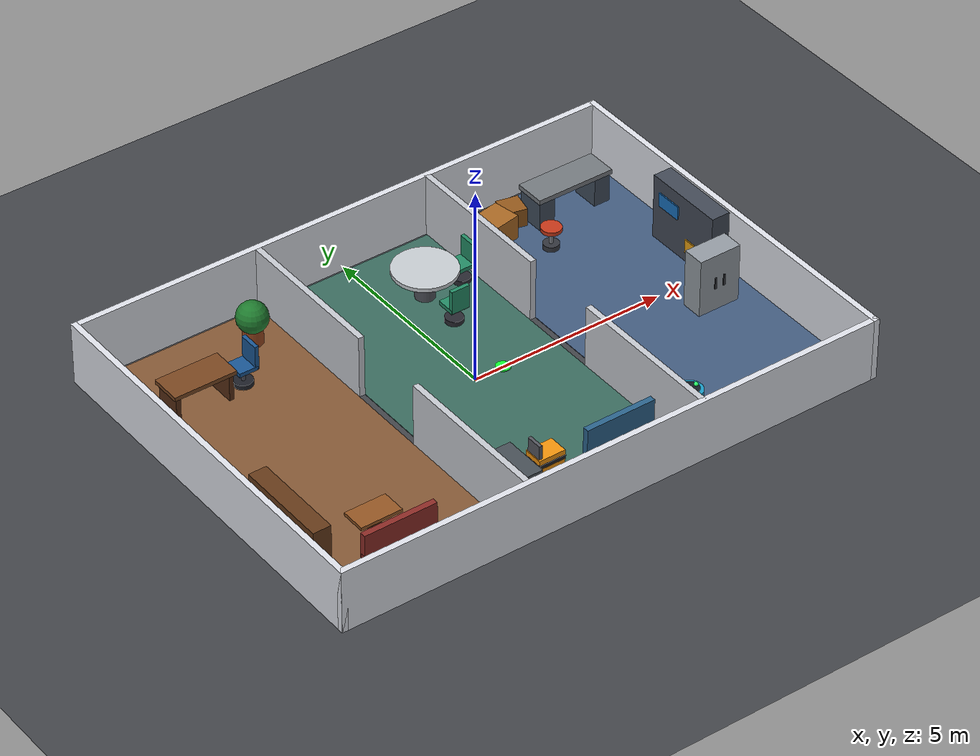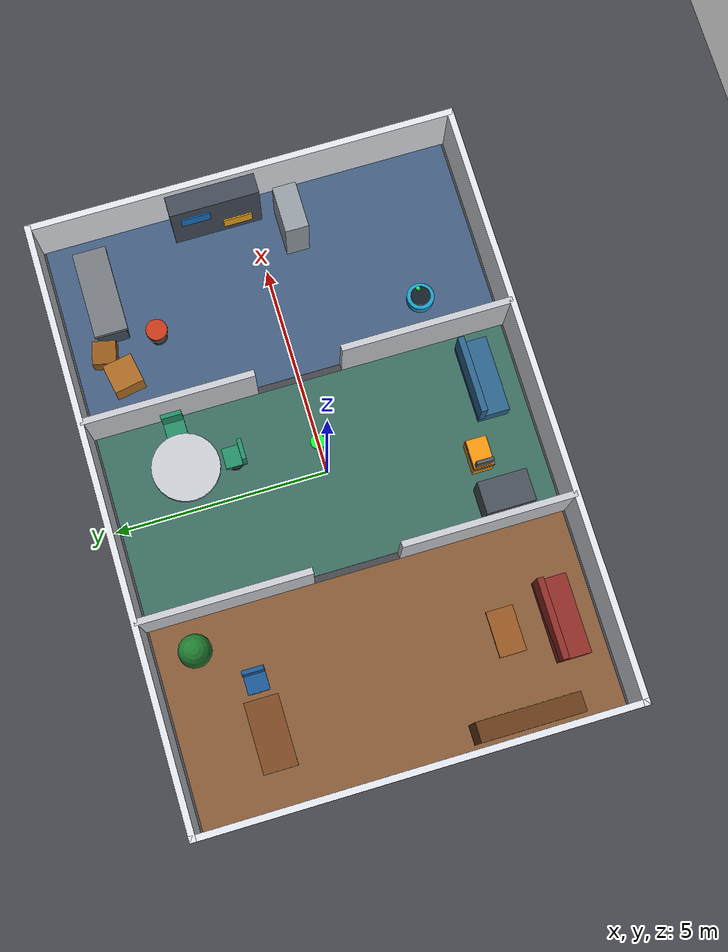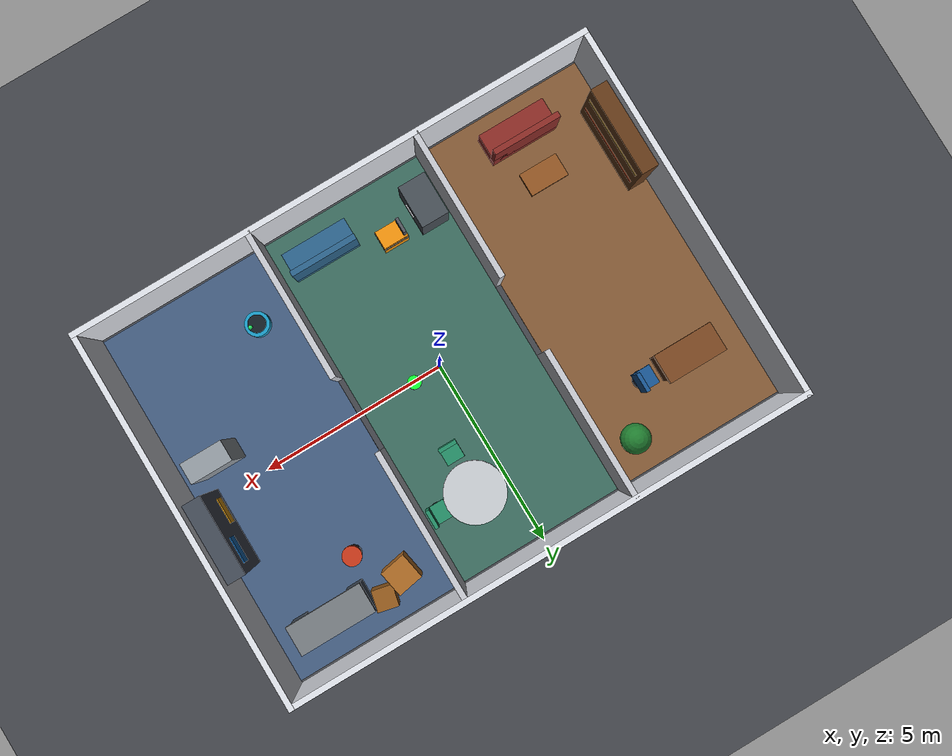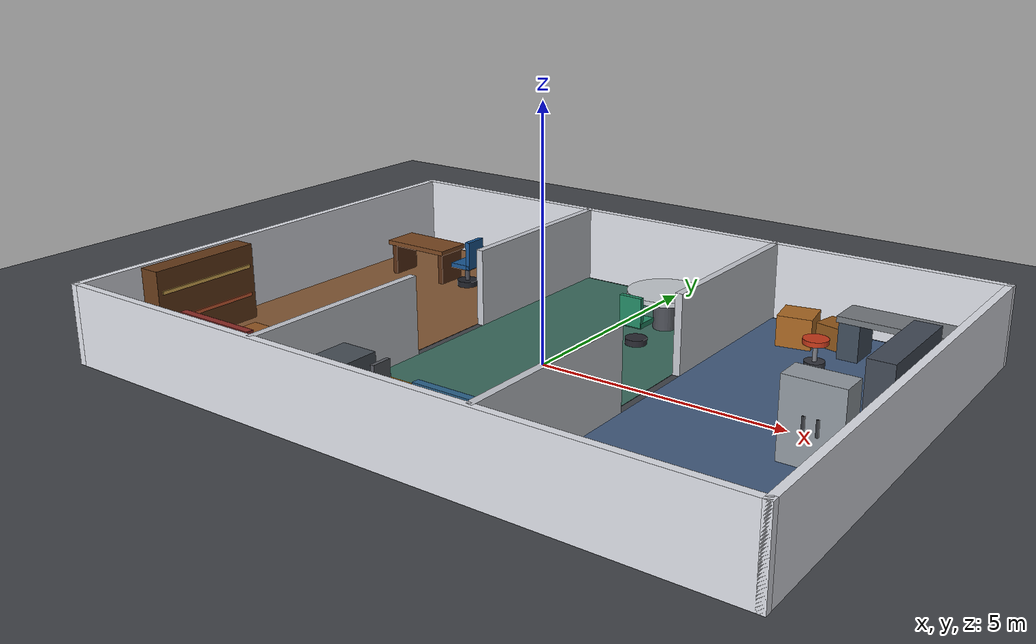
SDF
<?xml version="1.0" ?>
<sdf version="1.9">
  <world name="rl_office_training_world">
    <gravity>0 0 -9.8</gravity>

    <physics name="learning_physics" type="ode">
      <max_step_size>0.001</max_step_size>
      <real_time_factor>1.0</real_time_factor>
    </physics>

    <plugin filename="gz-sim-physics-system"
            name="gz::sim::systems::Physics"/>
    <plugin filename="gz-sim-user-commands-system"
            name="gz::sim::systems::UserCommands"/>
    <plugin filename="gz-sim-scene-broadcaster-system"
            name="gz::sim::systems::SceneBroadcaster"/>
    <plugin filename="gz-sim-contact-system"
            name="gz::sim::systems::Contact"/>

    <scene>
      <ambient>0.56 0.58 0.62 1</ambient>
      <background>0.72 0.78 0.86 1</background>
      <shadows>true</shadows>
      <grid>false</grid>
    </scene>

    <light name="sun" type="directional">
      <pose>0 0 12 0 0 0</pose>
      <cast_shadows>true</cast_shadows>
      <diffuse>0.82 0.82 0.80 1</diffuse>
      <specular>0.18 0.18 0.18 1</specular>
      <direction>-0.45 0.30 -1.0</direction>
    </light>

    <light name="office_light" type="point">
      <pose>-4.6 0 3.0 0 0 0</pose>
      <diffuse>0.96 0.86 0.70 1</diffuse>
      <specular>0.12 0.12 0.12 1</specular>
      <attenuation>
        <range>9</range>
        <constant>0.35</constant>
        <linear>0.025</linear>
        <quadratic>0.008</quadratic>
      </attenuation>
    </light>

    <light name="meeting_light" type="point">
      <pose>0 0 3.0 0 0 0</pose>
      <diffuse>0.82 0.92 0.84 1</diffuse>
      <specular>0.12 0.12 0.12 1</specular>
      <attenuation>
        <range>9</range>
        <constant>0.35</constant>
        <linear>0.025</linear>
        <quadratic>0.008</quadratic>
      </attenuation>
    </light>

    <light name="lab_light" type="point">
      <pose>4.6 0 3.0 0 0 0</pose>
      <diffuse>0.72 0.84 1.00 1</diffuse>
      <specular>0.14 0.14 0.14 1</specular>
      <attenuation>
        <range>9</range>
        <constant>0.35</constant>
        <linear>0.025</linear>
        <quadratic>0.008</quadratic>
      </attenuation>
    </light>

    <!-- One collision plane supports the complete building. -->
    <model name="ground_plane">
      <static>true</static>
      <link name="ground_link">
        <collision name="ground_collision">
          <geometry>
            <plane>
              <normal>0 0 1</normal>
              <size>16 12</size>
            </plane>
          </geometry>
          <surface>
            <friction>
              <ode>
                <mu>1.0</mu>
                <mu2>1.0</mu2>
              </ode>
            </friction>
          </surface>
        </collision>
        <visual name="ground_visual">
          <geometry>
            <plane>
              <normal>0 0 1</normal>
              <size>16 12</size>
            </plane>
          </geometry>
          <material>
            <ambient>0.19 0.20 0.22 1</ambient>
            <diffuse>0.26 0.27 0.29 1</diffuse>
            <specular>0.02 0.02 0.02 1</specular>
          </material>
        </visual>
      </link>
    </model>

    <!-- Visual-only floor panels make room identity obvious in recordings. -->
    <model name="office_floor_panel">
      <static>true</static>
      <pose>-4.65 0 0.006 0 0 0</pose>
      <link name="link">
        <visual name="visual">
          <geometry><box><size>4.55 9.75 0.01</size></box></geometry>
          <material>
            <ambient>0.42 0.28 0.17 1</ambient>
            <diffuse>0.52 0.35 0.21 1</diffuse>
          </material>
        </visual>
      </link>
    </model>

    <model name="meeting_floor_panel">
      <static>true</static>
      <pose>0 0 0.006 0 0 0</pose>
      <link name="link">
        <visual name="visual">
          <geometry><box><size>4.45 9.75 0.01</size></box></geometry>
          <material>
            <ambient>0.18 0.33 0.29 1</ambient>
            <diffuse>0.23 0.42 0.37 1</diffuse>
          </material>
        </visual>
      </link>
    </model>

    <model name="lab_floor_panel">
      <static>true</static>
      <pose>4.65 0 0.006 0 0 0</pose>
      <link name="link">
        <visual name="visual">
          <geometry><box><size>4.55 9.75 0.01</size></box></geometry>
          <material>
            <ambient>0.20 0.28 0.40 1</ambient>
            <diffuse>0.26 0.36 0.50 1</diffuse>
          </material>
        </visual>
      </link>
    </model>

    <!-- Outer walls: 14 m x 10 m interior, 1.6 m high. -->
    <model name="north_wall">
      <static>true</static>
      <pose>0 5.0 0.8 0 0 0</pose>
      <link name="link">
        <collision name="collision">
          <geometry><box><size>14.15 0.15 1.6</size></box></geometry>
        </collision>
        <visual name="visual">
          <geometry><box><size>14.15 0.15 1.6</size></box></geometry>
          <material>
            <ambient>0.80 0.82 0.86 1</ambient>
            <diffuse>0.88 0.89 0.92 1</diffuse>
          </material>
        </visual>
      </link>
    </model>

    <model name="south_wall">
      <static>true</static>
      <pose>0 -5.0 0.8 0 0 0</pose>
      <link name="link">
        <collision name="collision">
          <geometry><box><size>14.15 0.15 1.6</size></box></geometry>
        </collision>
        <visual name="visual">
          <geometry><box><size>14.15 0.15 1.6</size></box></geometry>
          <material>
            <ambient>0.80 0.82 0.86 1</ambient>
            <diffuse>0.88 0.89 0.92 1</diffuse>
          </material>
        </visual>
      </link>
    </model>

    <model name="west_wall">
      <static>true</static>
      <pose>-7.0 0 0.8 0 0 0</pose>
      <link name="link">
        <collision name="collision">
          <geometry><box><size>0.15 10.15 1.6</size></box></geometry>
        </collision>
        <visual name="visual">
          <geometry><box><size>0.15 10.15 1.6</size></box></geometry>
          <material>
            <ambient>0.80 0.82 0.86 1</ambient>
            <diffuse>0.88 0.89 0.92 1</diffuse>
          </material>
        </visual>
      </link>
    </model>

    <model name="east_wall">
      <static>true</static>
      <pose>7.0 0 0.8 0 0 0</pose>
      <link name="link">
        <collision name="collision">
          <geometry><box><size>0.15 10.15 1.6</size></box></geometry>
        </collision>
        <visual name="visual">
          <geometry><box><size>0.15 10.15 1.6</size></box></geometry>
          <material>
            <ambient>0.80 0.82 0.86 1</ambient>
            <diffuse>0.88 0.89 0.92 1</diffuse>
          </material>
        </visual>
      </link>
    </model>

    <!-- Partition at x=-2.3, with a 2.0 m doorway centred at y=0. -->
    <model name="office_partition_north">
      <static>true</static>
      <pose>-2.3 3.0 0.8 0 0 0</pose>
      <link name="link">
        <collision name="collision">
          <geometry><box><size>0.15 4.0 1.6</size></box></geometry>
        </collision>
        <visual name="visual">
          <geometry><box><size>0.15 4.0 1.6</size></box></geometry>
          <material>
            <ambient>0.68 0.70 0.74 1</ambient>
            <diffuse>0.78 0.79 0.82 1</diffuse>
          </material>
        </visual>
      </link>
    </model>

    <model name="office_partition_south">
      <static>true</static>
      <pose>-2.3 -3.0 0.8 0 0 0</pose>
      <link name="link">
        <collision name="collision">
          <geometry><box><size>0.15 4.0 1.6</size></box></geometry>
        </collision>
        <visual name="visual">
          <geometry><box><size>0.15 4.0 1.6</size></box></geometry>
          <material>
            <ambient>0.68 0.70 0.74 1</ambient>
            <diffuse>0.78 0.79 0.82 1</diffuse>
          </material>
        </visual>
      </link>
    </model>

    <!-- Partition at x=2.3, with another 2.0 m doorway. -->
    <model name="lab_partition_north">
      <static>true</static>
      <pose>2.3 3.0 0.8 0 0 0</pose>
      <link name="link">
        <collision name="collision">
          <geometry><box><size>0.15 4.0 1.6</size></box></geometry>
        </collision>
        <visual name="visual">
          <geometry><box><size>0.15 4.0 1.6</size></box></geometry>
          <material>
            <ambient>0.68 0.70 0.74 1</ambient>
            <diffuse>0.78 0.79 0.82 1</diffuse>
          </material>
        </visual>
      </link>
    </model>

    <model name="lab_partition_south">
      <static>true</static>
      <pose>2.3 -3.0 0.8 0 0 0</pose>
      <link name="link">
        <collision name="collision">
          <geometry><box><size>0.15 4.0 1.6</size></box></geometry>
        </collision>
        <visual name="visual">
          <geometry><box><size>0.15 4.0 1.6</size></box></geometry>
          <material>
            <ambient>0.68 0.70 0.74 1</ambient>
            <diffuse>0.78 0.79 0.82 1</diffuse>
          </material>
        </visual>
      </link>
    </model>

    <!-- ======================= OFFICE FURNITURE ======================= -->

    <model name="office_desk">
      <static>true</static>
      <pose>-5.35 2.85 0 0 0 0</pose>
      <link name="link">
        <collision name="top_collision">
          <pose>0 0 0.76 0 0 0</pose>
          <geometry><box><size>1.60 0.78 0.10</size></box></geometry>
        </collision>
        <visual name="top_visual">
          <pose>0 0 0.76 0 0 0</pose>
          <geometry><box><size>1.60 0.78 0.10</size></box></geometry>
          <material>
            <ambient>0.34 0.19 0.09 1</ambient>
            <diffuse>0.48 0.28 0.13 1</diffuse>
          </material>
        </visual>

        <collision name="left_leg_collision">
          <pose>-0.68 0 0.38 0 0 0</pose>
          <geometry><box><size>0.12 0.66 0.72</size></box></geometry>
        </collision>
        <visual name="left_leg_visual">
          <pose>-0.68 0 0.38 0 0 0</pose>
          <geometry><box><size>0.12 0.66 0.72</size></box></geometry>
          <material>
            <ambient>0.22 0.12 0.06 1</ambient>
            <diffuse>0.34 0.18 0.08 1</diffuse>
          </material>
        </visual>

        <collision name="right_leg_collision">
          <pose>0.68 0 0.38 0 0 0</pose>
          <geometry><box><size>0.12 0.66 0.72</size></box></geometry>
        </collision>
        <visual name="right_leg_visual">
          <pose>0.68 0 0.38 0 0 0</pose>
          <geometry><box><size>0.12 0.66 0.72</size></box></geometry>
          <material>
            <ambient>0.22 0.12 0.06 1</ambient>
            <diffuse>0.34 0.18 0.08 1</diffuse>
          </material>
        </visual>
      </link>
    </model>

    <model name="office_chair">
      <static>true</static>
      <pose>-4.15 2.85 0 0 0 3.14159</pose>
      <link name="link">
        <collision name="base_collision">
          <pose>0 0 0.07 0 0 0</pose>
          <geometry><cylinder><radius>0.23</radius><length>0.14</length></cylinder></geometry>
        </collision>
        <visual name="base_visual">
          <pose>0 0 0.07 0 0 0</pose>
          <geometry><cylinder><radius>0.23</radius><length>0.14</length></cylinder></geometry>
          <material><ambient>0.08 0.09 0.11 1</ambient><diffuse>0.12 0.13 0.16 1</diffuse></material>
        </visual>
        <collision name="stem_collision">
          <pose>0 0 0.28 0 0 0</pose>
          <geometry><cylinder><radius>0.05</radius><length>0.42</length></cylinder></geometry>
        </collision>
        <visual name="stem_visual">
          <pose>0 0 0.28 0 0 0</pose>
          <geometry><cylinder><radius>0.05</radius><length>0.42</length></cylinder></geometry>
          <material><ambient>0.20 0.21 0.24 1</ambient><diffuse>0.30 0.31 0.35 1</diffuse></material>
        </visual>
        <collision name="seat_collision">
          <pose>0 0 0.50 0 0 0</pose>
          <geometry><box><size>0.50 0.50 0.10</size></box></geometry>
        </collision>
        <visual name="seat_visual">
          <pose>0 0 0.50 0 0 0</pose>
          <geometry><box><size>0.50 0.50 0.10</size></box></geometry>
          <material><ambient>0.08 0.24 0.42 1</ambient><diffuse>0.10 0.34 0.58 1</diffuse></material>
        </visual>
        <collision name="back_collision">
          <pose>-0.21 0 0.78 0 0 0</pose>
          <geometry><box><size>0.10 0.50 0.62</size></box></geometry>
        </collision>
        <visual name="back_visual">
          <pose>-0.21 0 0.78 0 0 0</pose>
          <geometry><box><size>0.10 0.50 0.62</size></box></geometry>
          <material><ambient>0.08 0.24 0.42 1</ambient><diffuse>0.10 0.34 0.58 1</diffuse></material>
        </visual>
      </link>
    </model>

    <model name="office_bookshelf">
      <static>true</static>
      <pose>-6.60 -2.55 0.80 0 0 0</pose>
      <link name="link">
        <collision name="body_collision">
          <geometry><box><size>0.45 2.35 1.60</size></box></geometry>
        </collision>
        <visual name="body_visual">
          <geometry><box><size>0.45 2.35 1.60</size></box></geometry>
          <material><ambient>0.27 0.15 0.07 1</ambient><diffuse>0.40 0.23 0.10 1</diffuse></material>
        </visual>
        <visual name="shelf_light_1">
          <pose>0.235 0 0.35 0 0 0</pose>
          <geometry><box><size>0.025 2.15 0.07</size></box></geometry>
          <material><ambient>0.80 0.63 0.30 1</ambient><diffuse>0.90 0.72 0.34 1</diffuse></material>
        </visual>
        <visual name="shelf_light_2">
          <pose>0.235 0 -0.25 0 0 0</pose>
          <geometry><box><size>0.025 2.15 0.07</size></box></geometry>
          <material><ambient>0.72 0.30 0.18 1</ambient><diffuse>0.86 0.38 0.21 1</diffuse></material>
        </visual>
      </link>
    </model>

    <model name="office_sofa">
      <static>true</static>
      <pose>-4.70 -4.05 0 0 0 0</pose>
      <link name="link">
        <collision name="base_collision">
          <pose>0 0 0.22 0 0 0</pose>
          <geometry><box><size>1.85 0.75 0.44</size></box></geometry>
        </collision>
        <visual name="base_visual">
          <pose>0 0 0.22 0 0 0</pose>
          <geometry><box><size>1.85 0.75 0.44</size></box></geometry>
          <material><ambient>0.35 0.12 0.11 1</ambient><diffuse>0.55 0.17 0.15 1</diffuse></material>
        </visual>
        <collision name="back_collision">
          <pose>0 0.30 0.60 0 0 0</pose>
          <geometry><box><size>1.85 0.15 0.78</size></box></geometry>
        </collision>
        <visual name="back_visual">
          <pose>0 0.30 0.60 0 0 0</pose>
          <geometry><box><size>1.85 0.15 0.78</size></box></geometry>
          <material><ambient>0.35 0.12 0.11 1</ambient><diffuse>0.55 0.17 0.15 1</diffuse></material>
        </visual>
      </link>
    </model>

    <model name="office_coffee_table">
      <static>true</static>
      <pose>-4.65 -2.75 0 0 0 0</pose>
      <link name="link">
        <collision name="top_collision">
          <pose>0 0 0.43 0 0 0</pose>
          <geometry><box><size>1.05 0.62 0.08</size></box></geometry>
        </collision>
        <visual name="top_visual">
          <pose>0 0 0.43 0 0 0</pose>
          <geometry><box><size>1.05 0.62 0.08</size></box></geometry>
          <material><ambient>0.42 0.24 0.10 1</ambient><diffuse>0.58 0.34 0.14 1</diffuse></material>
        </visual>
        <collision name="pedestal_collision">
          <pose>0 0 0.22 0 0 0</pose>
          <geometry><box><size>0.24 0.24 0.42</size></box></geometry>
        </collision>
        <visual name="pedestal_visual">
          <pose>0 0 0.22 0 0 0</pose>
          <geometry><box><size>0.24 0.24 0.42</size></box></geometry>
          <material><ambient>0.22 0.12 0.05 1</ambient><diffuse>0.34 0.18 0.07 1</diffuse></material>
        </visual>
      </link>
    </model>

    <model name="office_plant">
      <static>true</static>
      <pose>-3.15 3.95 0 0 0 0</pose>
      <link name="link">
        <collision name="pot_collision">
          <pose>0 0 0.22 0 0 0</pose>
          <geometry><cylinder><radius>0.24</radius><length>0.44</length></cylinder></geometry>
        </collision>
        <visual name="pot_visual">
          <pose>0 0 0.22 0 0 0</pose>
          <geometry><cylinder><radius>0.24</radius><length>0.44</length></cylinder></geometry>
          <material><ambient>0.42 0.19 0.08 1</ambient><diffuse>0.60 0.28 0.12 1</diffuse></material>
        </visual>
        <visual name="leaves_visual">
          <pose>0 0 0.70 0 0 0</pose>
          <geometry><sphere><radius>0.38</radius></sphere></geometry>
          <material><ambient>0.08 0.32 0.12 1</ambient><diffuse>0.12 0.48 0.18 1</diffuse></material>
        </visual>
      </link>
    </model>

    <!-- =================== MEETING / LOUNGE FURNITURE =================== -->

    <model name="meeting_round_table">
      <static>true</static>
      <pose>0.85 3.05 0 0 0 0</pose>
      <link name="link">
        <collision name="pedestal_collision">
          <pose>0 0 0.37 0 0 0</pose>
          <geometry><cylinder><radius>0.24</radius><length>0.70</length></cylinder></geometry>
        </collision>
        <visual name="pedestal_visual">
          <pose>0 0 0.37 0 0 0</pose>
          <geometry><cylinder><radius>0.24</radius><length>0.70</length></cylinder></geometry>
          <material><ambient>0.20 0.21 0.23 1</ambient><diffuse>0.31 0.32 0.35 1</diffuse></material>
        </visual>
        <collision name="top_collision">
          <pose>0 0 0.76 0 0 0</pose>
          <geometry><cylinder><radius>0.78</radius><length>0.10</length></cylinder></geometry>
        </collision>
        <visual name="top_visual">
          <pose>0 0 0.76 0 0 0</pose>
          <geometry><cylinder><radius>0.78</radius><length>0.10</length></cylinder></geometry>
          <material><ambient>0.62 0.64 0.66 1</ambient><diffuse>0.78 0.80 0.82 1</diffuse></material>
        </visual>
      </link>
    </model>

    <model name="meeting_chair_east">
      <static>true</static>
      <pose>1.85 3.05 0 0 0 3.14159</pose>
      <link name="link">
        <collision name="base_collision"><pose>0 0 0.07 0 0 0</pose><geometry><cylinder><radius>0.22</radius><length>0.14</length></cylinder></geometry></collision>
        <visual name="base_visual"><pose>0 0 0.07 0 0 0</pose><geometry><cylinder><radius>0.22</radius><length>0.14</length></cylinder></geometry><material><ambient>0.10 0.10 0.12 1</ambient><diffuse>0.16 0.16 0.19 1</diffuse></material></visual>
        <collision name="seat_collision"><pose>0 0 0.48 0 0 0</pose><geometry><box><size>0.48 0.48 0.10</size></box></geometry></collision>
        <visual name="seat_visual"><pose>0 0 0.48 0 0 0</pose><geometry><box><size>0.48 0.48 0.10</size></box></geometry><material><ambient>0.10 0.38 0.28 1</ambient><diffuse>0.14 0.55 0.40 1</diffuse></material></visual>
        <collision name="back_collision"><pose>-0.20 0 0.75 0 0 0</pose><geometry><box><size>0.10 0.48 0.60</size></box></geometry></collision>
        <visual name="back_visual"><pose>-0.20 0 0.75 0 0 0</pose><geometry><box><size>0.10 0.48 0.60</size></box></geometry><material><ambient>0.10 0.38 0.28 1</ambient><diffuse>0.14 0.55 0.40 1</diffuse></material></visual>
      </link>
    </model>

    <model name="meeting_chair_south">
      <static>true</static>
      <pose>0.85 1.95 0 0 0 1.5708</pose>
      <link name="link">
        <collision name="base_collision"><pose>0 0 0.07 0 0 0</pose><geometry><cylinder><radius>0.22</radius><length>0.14</length></cylinder></geometry></collision>
        <visual name="base_visual"><pose>0 0 0.07 0 0 0</pose><geometry><cylinder><radius>0.22</radius><length>0.14</length></cylinder></geometry><material><ambient>0.10 0.10 0.12 1</ambient><diffuse>0.16 0.16 0.19 1</diffuse></material></visual>
        <collision name="seat_collision"><pose>0 0 0.48 0 0 0</pose><geometry><box><size>0.48 0.48 0.10</size></box></geometry></collision>
        <visual name="seat_visual"><pose>0 0 0.48 0 0 0</pose><geometry><box><size>0.48 0.48 0.10</size></box></geometry><material><ambient>0.10 0.38 0.28 1</ambient><diffuse>0.14 0.55 0.40 1</diffuse></material></visual>
        <collision name="back_collision"><pose>-0.20 0 0.75 0 0 0</pose><geometry><box><size>0.10 0.48 0.60</size></box></geometry></collision>
        <visual name="back_visual"><pose>-0.20 0 0.75 0 0 0</pose><geometry><box><size>0.10 0.48 0.60</size></box></geometry><material><ambient>0.10 0.38 0.28 1</ambient><diffuse>0.14 0.55 0.40 1</diffuse></material></visual>
      </link>
    </model>

    <model name="meeting_sofa">
      <static>true</static>
      <pose>1.05 -4.02 0 0 0 0</pose>
      <link name="link">
        <collision name="base_collision"><pose>0 0 0.22 0 0 0</pose><geometry><box><size>1.80 0.72 0.44</size></box></geometry></collision>
        <visual name="base_visual"><pose>0 0 0.22 0 0 0</pose><geometry><box><size>1.80 0.72 0.44</size></box></geometry><material><ambient>0.12 0.27 0.38 1</ambient><diffuse>0.17 0.39 0.55 1</diffuse></material></visual>
        <collision name="back_collision"><pose>0 0.29 0.60 0 0 0</pose><geometry><box><size>1.80 0.15 0.78</size></box></geometry></collision>
        <visual name="back_visual"><pose>0 0.29 0.60 0 0 0</pose><geometry><box><size>1.80 0.15 0.78</size></box></geometry><material><ambient>0.12 0.27 0.38 1</ambient><diffuse>0.17 0.39 0.55 1</diffuse></material></visual>
      </link>
    </model>

    <model name="meeting_side_cabinet">
      <static>true</static>
      <pose>-1.72 -3.65 0.47 0 0 0</pose>
      <link name="link">
        <collision name="collision"><geometry><box><size>0.75 1.15 0.94</size></box></geometry></collision>
        <visual name="visual"><geometry><box><size>0.75 1.15 0.94</size></box></geometry><material><ambient>0.18 0.20 0.22 1</ambient><diffuse>0.28 0.31 0.34 1</diffuse></material></visual>
        <visual name="handle_visual"><pose>0.39 0 0.10 0 0 0</pose><geometry><box><size>0.04 0.36 0.05</size></box></geometry><material><ambient>0.72 0.74 0.76 1</ambient><diffuse>0.85 0.86 0.88 1</diffuse></material></visual>
      </link>
    </model>

    <!-- ======================= LAB / STORAGE ======================= -->

    <model name="lab_workbench">
      <static>true</static>
      <pose>5.35 3.85 0 0 0 0</pose>
      <link name="link">
        <collision name="top_collision"><pose>0 0 0.82 0 0 0</pose><geometry><box><size>2.05 0.78 0.12</size></box></geometry></collision>
        <visual name="top_visual"><pose>0 0 0.82 0 0 0</pose><geometry><box><size>2.05 0.78 0.12</size></box></geometry><material><ambient>0.30 0.32 0.34 1</ambient><diffuse>0.46 0.48 0.50 1</diffuse></material></visual>
        <collision name="left_cabinet_collision"><pose>-0.78 0 0.39 0 0 0</pose><geometry><box><size>0.42 0.70 0.78</size></box></geometry></collision>
        <visual name="left_cabinet_visual"><pose>-0.78 0 0.39 0 0 0</pose><geometry><box><size>0.42 0.70 0.78</size></box></geometry><material><ambient>0.17 0.20 0.24 1</ambient><diffuse>0.25 0.30 0.36 1</diffuse></material></visual>
        <collision name="right_cabinet_collision"><pose>0.78 0 0.39 0 0 0</pose><geometry><box><size>0.42 0.70 0.78</size></box></geometry></collision>
        <visual name="right_cabinet_visual"><pose>0.78 0 0.39 0 0 0</pose><geometry><box><size>0.42 0.70 0.78</size></box></geometry><material><ambient>0.17 0.20 0.24 1</ambient><diffuse>0.25 0.30 0.36 1</diffuse></material></visual>
      </link>
    </model>

    <model name="lab_storage_rack">
      <static>true</static>
      <pose>6.55 0.80 0.85 0 0 0</pose>
      <link name="link">
        <collision name="body_collision"><geometry><box><size>0.48 2.10 1.70</size></box></geometry></collision>
        <visual name="body_visual"><geometry><box><size>0.48 2.10 1.70</size></box></geometry><material><ambient>0.17 0.19 0.22 1</ambient><diffuse>0.26 0.29 0.34 1</diffuse></material></visual>
        <visual name="yellow_bin"><pose>-0.25 -0.48 -0.40 0 0 0</pose><geometry><box><size>0.04 0.68 0.36</size></box></geometry><material><ambient>0.70 0.48 0.06 1</ambient><diffuse>0.92 0.64 0.08 1</diffuse></material></visual>
        <visual name="blue_bin"><pose>-0.25 0.48 0.32 0 0 0</pose><geometry><box><size>0.04 0.68 0.36</size></box></geometry><material><ambient>0.07 0.31 0.55 1</ambient><diffuse>0.09 0.44 0.75 1</diffuse></material></visual>
      </link>
    </model>

    <model name="lab_tall_cabinet">
      <static>true</static>
      <pose>5.85 -0.85 0.75 0 0 0</pose>
      <link name="link">
        <collision name="collision"><geometry><box><size>1.10 0.55 1.50</size></box></geometry></collision>
        <visual name="visual"><geometry><box><size>1.10 0.55 1.50</size></box></geometry><material><ambient>0.42 0.45 0.48 1</ambient><diffuse>0.58 0.61 0.64 1</diffuse></material></visual>
        <visual name="left_handle"><pose>-0.12 -0.285 0 0 0 0</pose><geometry><box><size>0.05 0.03 0.30</size></box></geometry><material><ambient>0.12 0.13 0.15 1</ambient><diffuse>0.20 0.21 0.23 1</diffuse></material></visual>
        <visual name="right_handle"><pose>0.12 -0.285 0 0 0 0</pose><geometry><box><size>0.05 0.03 0.30</size></box></geometry><material><ambient>0.12 0.13 0.15 1</ambient><diffuse>0.20 0.21 0.23 1</diffuse></material></visual>
      </link>
    </model>

    <model name="lab_crate_a">
      <static>true</static>
      <pose>3.40 3.85 0.32 0 0 0.18</pose>
      <link name="link">
        <collision name="collision"><geometry><box><size>0.70 0.70 0.64</size></box></geometry></collision>
        <visual name="visual"><geometry><box><size>0.70 0.70 0.64</size></box></geometry><material><ambient>0.48 0.29 0.10 1</ambient><diffuse>0.67 0.41 0.14 1</diffuse></material></visual>
      </link>
    </model>

    <model name="lab_crate_b">
      <static>true</static>
      <pose>4.05 4.15 0.24 0 0 -0.22</pose>
      <link name="link">
        <collision name="collision"><geometry><box><size>0.55 0.55 0.48</size></box></geometry></collision>
        <visual name="visual"><geometry><box><size>0.55 0.55 0.48</size></box></geometry><material><ambient>0.38 0.23 0.08 1</ambient><diffuse>0.58 0.35 0.11 1</diffuse></material></visual>
      </link>
    </model>

    <model name="lab_stool">
      <static>true</static>
      <pose>4.20 2.85 0 0 0 0</pose>
      <link name="link">
        <collision name="base_collision"><pose>0 0 0.07 0 0 0</pose><geometry><cylinder><radius>0.20</radius><length>0.14</length></cylinder></geometry></collision>
        <visual name="base_visual"><pose>0 0 0.07 0 0 0</pose><geometry><cylinder><radius>0.20</radius><length>0.14</length></cylinder></geometry><material><ambient>0.12 0.13 0.15 1</ambient><diffuse>0.20 0.21 0.24 1</diffuse></material></visual>
        <collision name="stem_collision"><pose>0 0 0.29 0 0 0</pose><geometry><cylinder><radius>0.045</radius><length>0.44</length></cylinder></geometry></collision>
        <visual name="stem_visual"><pose>0 0 0.29 0 0 0</pose><geometry><cylinder><radius>0.045</radius><length>0.44</length></cylinder></geometry><material><ambient>0.32 0.33 0.35 1</ambient><diffuse>0.48 0.49 0.52 1</diffuse></material></visual>
        <collision name="seat_collision"><pose>0 0 0.54 0 0 0</pose><geometry><cylinder><radius>0.25</radius><length>0.10</length></cylinder></geometry></collision>
        <visual name="seat_visual"><pose>0 0 0.54 0 0 0</pose><geometry><cylinder><radius>0.25</radius><length>0.10</length></cylinder></geometry><material><ambient>0.58 0.16 0.08 1</ambient><diffuse>0.78 0.22 0.10 1</diffuse></material></visual>
      </link>
    </model>

    <!-- ======================= MOVING OBSTACLES ======================= -->

    <!-- Slow service cart traversing the middle room and crossing y=0. -->
    <model name="moving_service_cart">
      <static>false</static>
      <pose>-0.65 -3.40 0.30 0 0 0</pose>
      <link name="base_link">
        <inertial>
          <mass>6.0</mass>
          <inertia>
            <ixx>0.281</ixx><ixy>0</ixy><ixz>0</ixz>
            <iyy>0.393</iyy><iyz>0</iyz><izz>0.312</izz>
          </inertia>
        </inertial>
        <velocity_decay><linear>0.55</linear><angular>0.75</angular></velocity_decay>
        <collision name="body_collision">
          <geometry><box><size>0.68 0.48 0.60</size></box></geometry>
          <surface><friction><ode><mu>0.8</mu><mu2>0.8</mu2></ode></friction></surface>
        </collision>
        <visual name="body_visual">
          <geometry><box><size>0.68 0.48 0.60</size></box></geometry>
          <material><ambient>0.76 0.43 0.04 1</ambient><diffuse>0.95 0.58 0.05 1</diffuse></material>
        </visual>
        <visual name="warning_band_visual">
          <pose>0 0 0.12 0 0 0</pose>
          <geometry><box><size>0.70 0.50 0.10</size></box></geometry>
          <material><ambient>0.08 0.08 0.09 1</ambient><diffuse>0.12 0.12 0.13 1</diffuse></material>
        </visual>
        <visual name="handle_visual">
          <pose>-0.28 0 0.48 0 0 0</pose>
          <geometry><box><size>0.08 0.40 0.36</size></box></geometry>
          <material><ambient>0.20 0.21 0.23 1</ambient><diffuse>0.33 0.34 0.37 1</diffuse></material>
        </visual>
      </link>
      <plugin filename="gz-sim-trajectory-follower-system"
              name="gz::sim::systems::TrajectoryFollower">
        <link_name>base_link</link_name>
        <loop>true</loop>
        <range_tolerance>0.18</range_tolerance>
        <bearing_tolerance>7.0</bearing_tolerance>
        <zero_vel_on_bearing_reached>true</zero_vel_on_bearing_reached>
        <force>1.05</force>
        <torque>0.75</torque>
        <waypoints>
          <waypoint>-0.65 -3.40</waypoint>
          <waypoint>-0.65 3.45</waypoint>
        </waypoints>
      </plugin>
    </model>

    <!-- Low circular cleaner following a rectangular loop in the lab. -->
    <model name="moving_cleaner">
      <static>false</static>
      <pose>3.35 -3.25 0.13 0 0 0</pose>
      <link name="base_link">
        <inertial>
          <mass>3.0</mass>
          <inertia>
            <ixx>0.091</ixx><ixy>0</ixy><ixz>0</ixz>
            <iyy>0.091</iyy><iyz>0</iyz><izz>0.154</izz>
          </inertia>
        </inertial>
        <velocity_decay><linear>0.60</linear><angular>0.82</angular></velocity_decay>
        <collision name="body_collision">
          <geometry><cylinder><radius>0.32</radius><length>0.26</length></cylinder></geometry>
          <surface><friction><ode><mu>0.75</mu><mu2>0.75</mu2></ode></friction></surface>
        </collision>
        <visual name="body_visual">
          <geometry><cylinder><radius>0.32</radius><length>0.26</length></cylinder></geometry>
          <material><ambient>0.08 0.42 0.54 1</ambient><diffuse>0.10 0.61 0.78 1</diffuse></material>
        </visual>
        <visual name="top_visual">
          <pose>0 0 0.145 0 0 0</pose>
          <geometry><cylinder><radius>0.23</radius><length>0.04</length></cylinder></geometry>
          <material><ambient>0.05 0.08 0.10 1</ambient><diffuse>0.08 0.12 0.15 1</diffuse></material>
        </visual>
        <visual name="direction_visual">
          <pose>0.18 0 0.175 0 0 0</pose>
          <geometry><sphere><radius>0.055</radius></sphere></geometry>
          <material><ambient>0.12 0.80 0.32 1</ambient><diffuse>0.16 1.00 0.42 1</diffuse><emissive>0.04 0.30 0.10 1</emissive></material>
        </visual>
      </link>
      <plugin filename="gz-sim-trajectory-follower-system"
              name="gz::sim::systems::TrajectoryFollower">
        <link_name>base_link</link_name>
        <loop>true</loop>
        <range_tolerance>0.16</range_tolerance>
        <bearing_tolerance>8.0</bearing_tolerance>
        <zero_vel_on_bearing_reached>true</zero_vel_on_bearing_reached>
        <force>0.62</force>
        <torque>0.42</torque>
        <waypoints>
          <waypoint>3.35 -3.25</waypoint>
          <waypoint>5.75 -3.25</waypoint>
          <waypoint>5.75 -2.00</waypoint>
          <waypoint>3.35 -2.00</waypoint>
        </waypoints>
      </plugin>
    </model>

    <model name="goal_marker">
      <static>true</static>
      <pose>0.75 0 0.018 0 0 0</pose>
      <link name="link">
        <visual name="goal_visual">
          <geometry><cylinder><radius>0.18</radius><length>0.036</length></cylinder></geometry>
          <material>
            <ambient>0.05 0.90 0.16 1</ambient>
            <diffuse>0.06 1.00 0.20 1</diffuse>
            <specular>0.25 0.25 0.25 1</specular>
            <emissive>0.03 0.45 0.08 1</emissive>
          </material>
        </visual>
      </link>
    </model>

    <camera name="user_camera">
      <pose>0 -12.5 14.5 0 0.80 1.5708</pose>
      <view_controller>orbit</view_controller>
      <projection_type>perspective</projection_type>
    </camera>
  </world>
</sdf>
